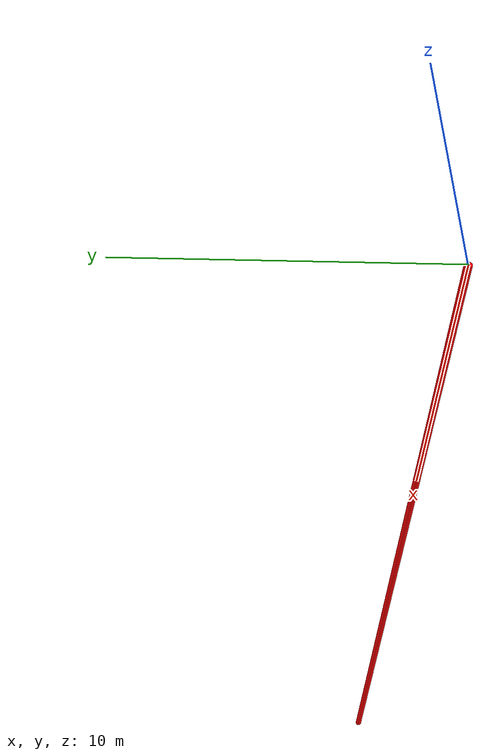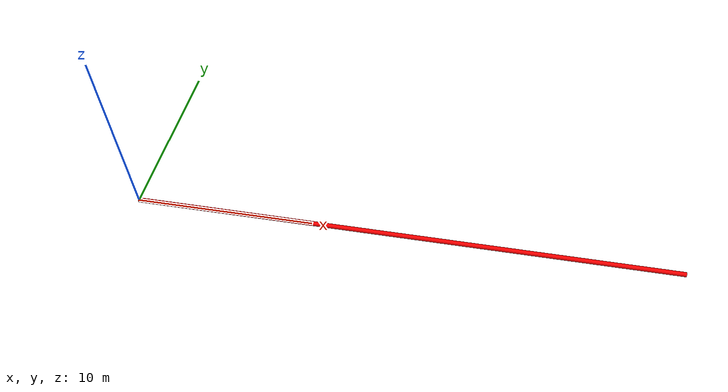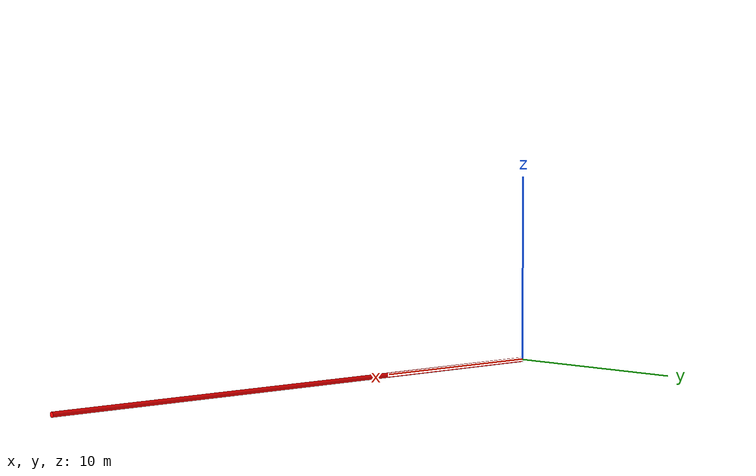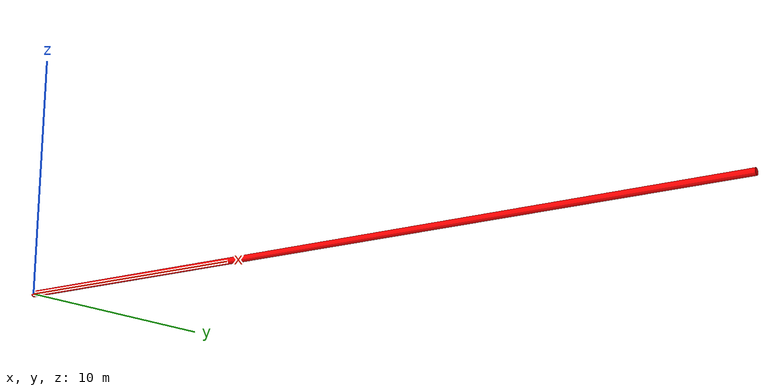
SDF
<?xml version="1.0" encoding="utf-8"?>
<sdf version="1.5">
  <model name="rod-30m">
    <pose>0 0 0 0 0 0</pose>
    <plugin name="clock" filename="libgz_clock.so">
      <topic>/gazebo/frc/time</topic>
    </plugin>
    <link name="length-30m">
      <gravity>1</gravity>
      <self_collide>0</self_collide>
      <pose>14.9987 0 -1.8040615946902E-18 0 0 0</pose>
      <must_be_base_link>1</must_be_base_link>
      <velocity_decay>
        <linear>0</linear>
        <angular>0</angular>
      </velocity_decay>
      <inertial>
        <mass>1519.99069334793</mass>
        <pose>0 0 0 0 0 0</pose>
        <inertia>
          <ixx>12.2579649465044</ixx>
          <ixy>5.59513542839935E-30</ixy>
          <ixz>0</ixz>
          <iyy>113985.671960816</iyy>
          <iyz>0</iyz>
          <izz>113985.671960816</izz>
        </inertia>
      </inertial>
      <collision name="length-30m_collision">
        <pose>-14.9987 0 1.8040615946902E-18 0 0 0</pose>
        <geometry>
          <mesh>
            <scale>1 1 1</scale>
            <uri>model://rod-30m/meshes/length-30m_col.STL</uri>
          </mesh>
        </geometry>
        <surface>
          <contact>
            <ode />
          </contact>
          <friction>
            <ode>
              <mu>0</mu>
              <mu2>0</mu2>
            </ode>
          </friction>
        </surface>
      </collision>
      <visual name="length-30m_visual">
        <pose>-14.9987 0 1.8040615946902E-18 0 0 0</pose>
        <material>
          <ambient>1 0 0 1</ambient>
          <diffuse>1 0 0 1</diffuse>
        </material>
        <geometry>
          <mesh>
            <scale>1 1 1</scale>
            <uri>model://rod-30m/meshes/length-30m.STL</uri>
          </mesh>
        </geometry>
      </visual>
    </link>
  </model>
</sdf>
